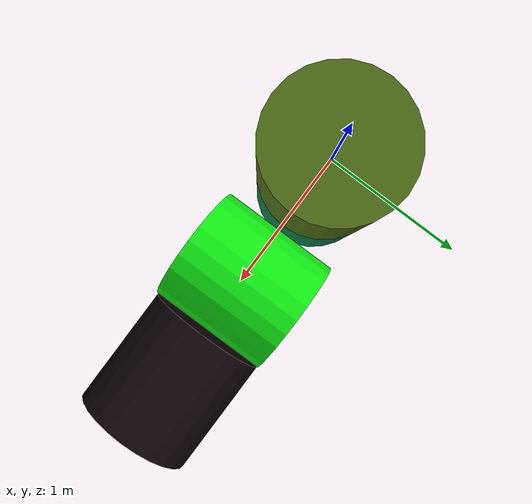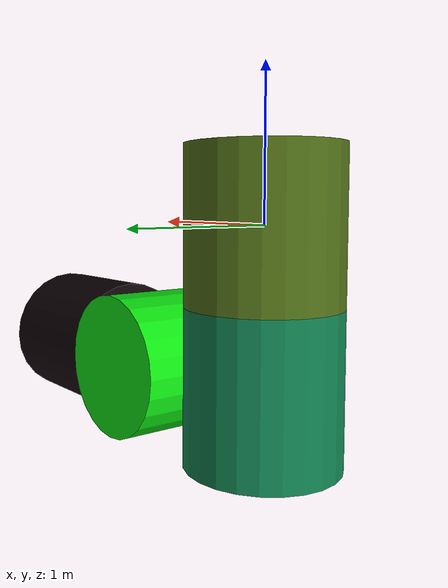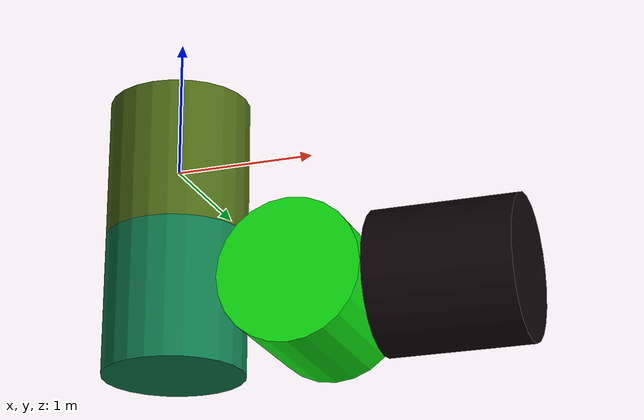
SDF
<sdf version="1.6">
<model name="robot" canonical_link='map'>
  <static>false</static>
  <pose relative_to='world'>0 0 0 0 0 0</pose>
  <link name="map"></link>
  <link name="base_link">
    <pose relative_to='map'>0 0 0 0 0 0</pose>
    <visual name='base_link visual'>
      <pose>0 0 0 0 0 0</pose>
      <geometry>
        <cylinder>
          <radius>0.5</radius>
          <length>1</length>
        </cylinder>
      </geometry>
      <material>
         <ambient>0.2917706498067336 0.407240211891531 0.08021982030622662 1</ambient>
         <diffuse>0.2917706498067336 0.407240211891531 0.08021982030622662 1</diffuse>
         <specular>0.1 0.1 0.1 1</specular>
         <emissive>0 0 0 1</emissive>
       </material>
    </visual>
    <collision name='base_link collision'>
      <pose>0 0 0 0 0 0</pose>
      <geometry>
        <cylinder>
          <radius>0.5</radius>
          <length>1</length>
        </cylinder>
      </geometry>
    </collision>
    <inertial>
      <mass>1</mass>
      <inertia>
        <ixx>0.3333333333333333</ixx>
        <ixy>0</ixy>
        <ixz>0</ixz>
        <iyy>0.5</iyy>
        <iyz>0</iyz>
        <izz>0.3333333333333333</izz>
      </inertia>
    </inertial>
  </link>
  <joint name="map_to_base_link" type="fixed">
    <pose relative_to='base_link'>0 0 0 0 0 0 </pose>
    <parent>map</parent>
    <child>base_link</child>
  </joint>
  <link name="cylinder1">
    <pose relative_to='base_link'>0 0 -1 0 0 0</pose>
    <visual name='cylinder1 visual'>
      <pose>0 0 0 0 0 0</pose>
      <geometry>
        <cylinder>
          <radius>0.5</radius>
          <length>1</length>
        </cylinder>
      </geometry>
      <material>
         <ambient>0.05286064701616472 0.46778379610254284 0.2874408377161099 1</ambient>
         <diffuse>0.05286064701616472 0.46778379610254284 0.2874408377161099 1</diffuse>
         <specular>0.1 0.1 0.1 1</specular>
         <emissive>0 0 0 1</emissive>
       </material>
    </visual>
    <collision name='cylinder1 collision'>
      <pose>0 0 0 0 0 0</pose>
      <geometry>
        <cylinder>
          <radius>0.5</radius>
          <length>1</length>
        </cylinder>
      </geometry>
    </collision>
    <inertial>
      <mass>1</mass>
      <inertia>
        <ixx>0.3333333333333333</ixx>
        <ixy>0</ixy>
        <ixz>0</ixz>
        <iyy>0.5</iyy>
        <iyz>0</iyz>
        <izz>0.3333333333333333</izz>
      </inertia>
    </inertial>
  </link>
  <joint name="base_link_to_cylinder1" type="revolute">
    <pose relative_to='cylinder1'>0 0 0 0 0 0 </pose>
    <parent>base_link</parent>
    <child>cylinder1</child>
    <axis>
        <xyz expressed_in='cylinder1'>0 0 1</xyz>
    </axis>
  </joint>
  <link name="cylinder2">
    <pose relative_to='cylinder1'>1 0 0 1.5707963267948963 0 0</pose>
    <visual name='cylinder2 visual'>
      <pose>0 0 0 0 0 0</pose>
      <geometry>
        <cylinder>
          <radius>0.5</radius>
          <length>1</length>
        </cylinder>
      </geometry>
      <material>
         <ambient>0.05612849004241121 0.8962693533719567 0.06847816983662762 1</ambient>
         <diffuse>0.05612849004241121 0.8962693533719567 0.06847816983662762 1</diffuse>
         <specular>0.1 0.1 0.1 1</specular>
         <emissive>0 0 0 1</emissive>
       </material>
    </visual>
    <collision name='cylinder2 collision'>
      <pose>0 0 0 0 0 0</pose>
      <geometry>
        <cylinder>
          <radius>0.5</radius>
          <length>1</length>
        </cylinder>
      </geometry>
    </collision>
    <inertial>
      <mass>1</mass>
      <inertia>
        <ixx>0.3333333333333333</ixx>
        <ixy>0</ixy>
        <ixz>0</ixz>
        <iyy>0.5</iyy>
        <iyz>0</iyz>
        <izz>0.3333333333333333</izz>
      </inertia>
    </inertial>
  </link>
  <joint name="cylinder1_to_cylinder2" type="revolute">
    <pose relative_to='cylinder2'>0 0 0 0 0 0 </pose>
    <parent>cylinder1</parent>
    <child>cylinder2</child>
    <axis>
        <xyz expressed_in='cylinder2'>0 0 1</xyz>
        <limit>            <lower>-1.57</lower>            <upper>1.57</upper>        </limit>
    </axis>
  </joint>
  <link name="cylinder3">
    <pose relative_to='cylinder2'>1 0 0 -1.5707963267948966 2.220446049250313e-16 -1.5707963267948963</pose>
    <visual name='cylinder3 visual'>
      <pose>0 0 0 0 0 0</pose>
      <geometry>
        <cylinder>
          <radius>0.5</radius>
          <length>1</length>
        </cylinder>
      </geometry>
      <material>
         <ambient>0.05286064701616472 0.012983032338510335 0.02732089163382382 1</ambient>
         <diffuse>0.05286064701616472 0.012983032338510335 0.02732089163382382 1</diffuse>
         <specular>0.1 0.1 0.1 1</specular>
         <emissive>0 0 0 1</emissive>
       </material>
    </visual>
    <collision name='cylinder3 collision'>
      <pose>0 0 0 0 0 0</pose>
      <geometry>
        <cylinder>
          <radius>0.5</radius>
          <length>1</length>
        </cylinder>
      </geometry>
    </collision>
    <inertial>
      <mass>1</mass>
      <inertia>
        <ixx>0.3333333333333333</ixx>
        <ixy>0</ixy>
        <ixz>0</ixz>
        <iyy>0.5</iyy>
        <iyz>0</iyz>
        <izz>0.3333333333333333</izz>
      </inertia>
    </inertial>
  </link>
  <joint name="cylinder2_to_cylinder3" type="revolute">
    <pose relative_to='cylinder3'>0 0 0 0 0 0 </pose>
    <parent>cylinder2</parent>
    <child>cylinder3</child>
    <axis>
        <xyz expressed_in='cylinder3'>0 0 1</xyz>
    </axis>
  </joint>
</model>
    <plugin name="joint_state_publisher" filename="libgazebo_ros_joint_state_publisher.so">
        <ros>
            <remapping>~/out:=/joint_states</remapping>
        </ros>
        <update_rate>5</update_rate>
       <joint_name>base_link_to_cylinder1</joint_name>
       <joint_name>cylinder1_to_cylinder2</joint_name>
       <joint_name>cylinder2_to_cylinder3</joint_name>
    </plugin>
      <plugin name="gazebo_ros_control" filename="libgazebo_ros_control.so">
      <robotNamespace>/</robotNamespace>
      <robotParam>robot_description</robotParam>
    </plugin>
</sdf>
